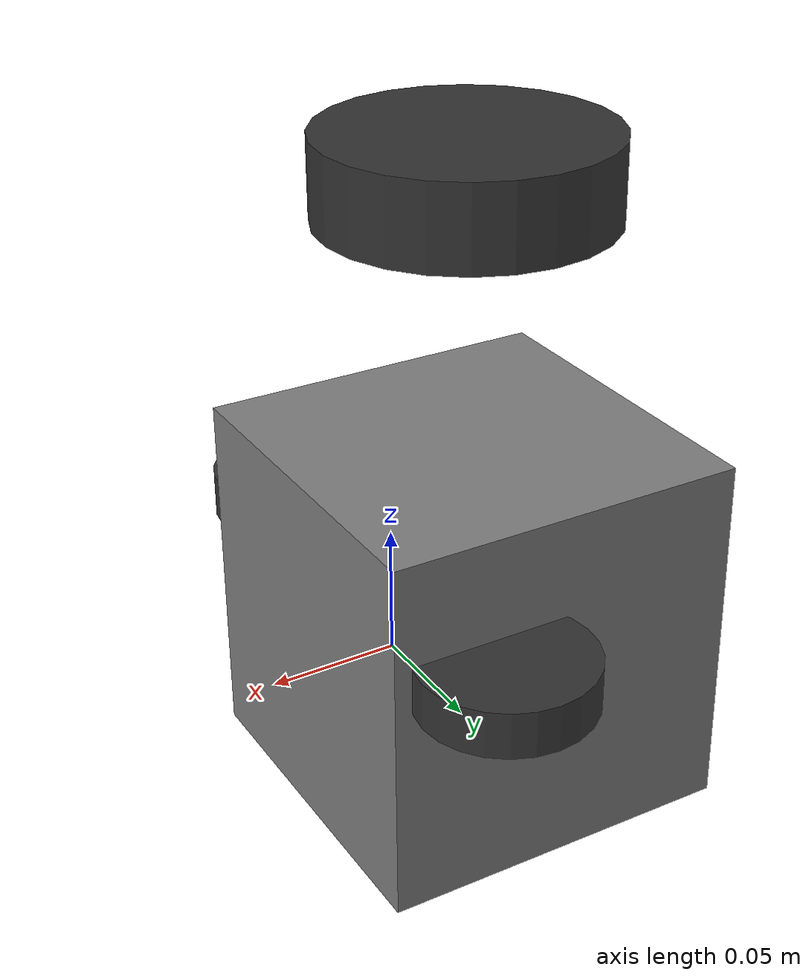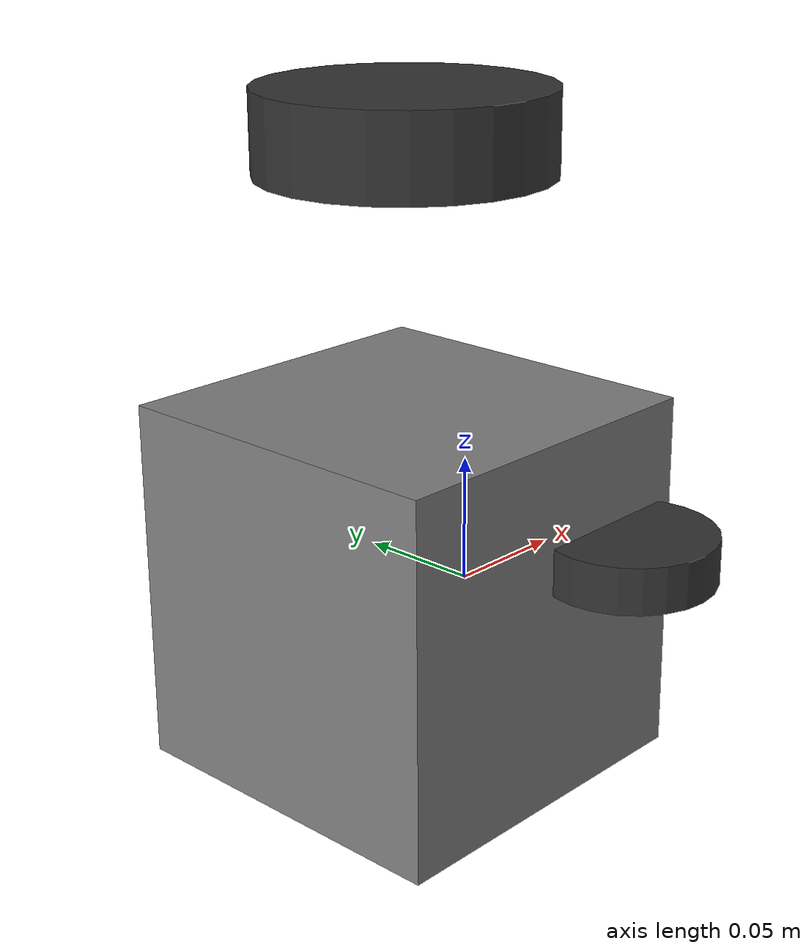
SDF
<?xml version="1.0" ?>
<sdf version="1.9">
  <model name="turtlebot3_burger">
    <link name="base_footprint">
      <inertial>
        <mass>0.944</mass>
        <inertia>
          <ixx>0.00718</ixx><ixy>0</ixy><ixz>0</ixz>
          <iyy>0.00722</iyy><iyz>0</iyz>
          <izz>0.00414</izz>
        </inertia>
      </inertial>
      <collision name="base_collision">
        <pose>-0.032 0 0.08 0 0 0</pose>
        <geometry><box><size>0.14 0.14 0.143</size></box></geometry>
      </collision>
      <visual name="base_visual">
        <pose>-0.032 0 0.01 0 0 0</pose>
        <geometry><box><size>0.14 0.14 0.143</size></box></geometry>
        <material><ambient>0.5 0.5 0.5 1</ambient><diffuse>0.5 0.5 0.5 1</diffuse></material>
      </visual>

      <!-- 라이다 시각화 -->
      <visual name="lidar_visual">
        <pose>-0.032 0 0.182 0 0 0</pose>
        <geometry><cylinder><radius>0.055</radius><length>0.0315</length></cylinder></geometry>
        <material><ambient>0.2 0.2 0.2 1</ambient><diffuse>0.2 0.2 0.2 1</diffuse></material>
      </visual>

      <!-- 라이다 센서 -->
      <sensor name="lidar" type="gpu_lidar">
  <pose>-0.032 0 0.182 0 0 0</pose>
  <always_on>true</always_on>
  <visualize>true</visualize>
  <update_rate>5</update_rate>
  <lidar>
    <scan>
      <horizontal>
        <samples>360</samples>
        <resolution>1.0</resolution>
        <min_angle>0.0</min_angle>
        <max_angle>6.28319</max_angle>
      </horizontal>
    </scan>
    <range>
      <min>0.12</min>
      <max>3.5</max>
      <resolution>0.015</resolution>
    </range>
    <noise>
      <type>gaussian</type>
      <mean>0.0</mean>
      <stddev>0.01</stddev>
    </noise>
  </lidar>
  <plugin filename="ignition-gazebo-gpu-lidar-sensor-system"
          name="ignition::gazebo::systems::GpuLidarSensor"/>
</sensor>
    </link>

    <!-- 왼쪽 바퀴 -->
    <joint name="wheel_left_joint" type="revolute">
      <parent>base_footprint</parent>
      <child>wheel_left_link</child>
      <pose>0 0.08 0.033 0 0 0</pose>
      <axis>
        <xyz>0 1 0</xyz>
        <limit><lower>-1e+16</lower><upper>1e+16</upper></limit>
      </axis>
    </joint>
    <link name="wheel_left_link">
      <pose>0 0.08 0.033 0 0 0</pose>
      <inertial>
        <mass>0.0285</mass>
        <inertia><ixx>1.12e-05</ixx><ixy>0</ixy><ixz>0</ixz><iyy>1.12e-05</iyy><iyz>0</iyz><izz>2.07e-05</izz></inertia>
      </inertial>
      <collision name="col">
        <geometry><cylinder><radius>0.033</radius><length>0.018</length></cylinder></geometry>
      </collision>
      <visual name="vis">
        <geometry><cylinder><radius>0.033</radius><length>0.018</length></cylinder></geometry>
        <material><ambient>0.2 0.2 0.2 1</ambient><diffuse>0.2 0.2 0.2 1</diffuse></material>
      </visual>
    </link>

    <!-- 오른쪽 바퀴 -->
    <joint name="wheel_right_joint" type="revolute">
      <parent>base_footprint</parent>
      <child>wheel_right_link</child>
      <pose>0 -0.08 0.033 0 0 0</pose>
      <axis>
        <xyz>0 1 0</xyz>
        <limit><lower>-1e+16</lower><upper>1e+16</upper></limit>
      </axis>
    </joint>
    <link name="wheel_right_link">
      <pose>0 -0.08 0.033 0 0 0</pose>
      <inertial>
        <mass>0.0285</mass>
        <inertia><ixx>1.12e-05</ixx><ixy>0</ixy><ixz>0</ixz><iyy>1.12e-05</iyy><iyz>0</iyz><izz>2.07e-05</izz></inertia>
      </inertial>
      <collision name="col">
        <geometry><cylinder><radius>0.033</radius><length>0.018</length></cylinder></geometry>
      </collision>
      <visual name="vis">
        <geometry><cylinder><radius>0.033</radius><length>0.018</length></cylinder></geometry>
        <material><ambient>0.2 0.2 0.2 1</ambient><diffuse>0.2 0.2 0.2 1</diffuse></material>
      </visual>
    </link>

    <!-- DiffDrive 플러그인 -->
    <plugin filename="ignition-gazebo-diff-drive-system"
            name="ignition::gazebo::systems::DiffDrive">
      <left_joint>wheel_left_joint</left_joint>
      <right_joint>wheel_right_joint</right_joint>
      <wheel_separation>0.160</wheel_separation>
      <wheel_radius>0.033</wheel_radius>
      <odom_publish_frequency>30</odom_publish_frequency>
      <topic>cmd_vel</topic>
      <odom_topic>odom</odom_topic>
      <frame_id>odom</frame_id>
      <child_frame_id>base_footprint</child_frame_id>
    </plugin>

  </model>
</sdf>
